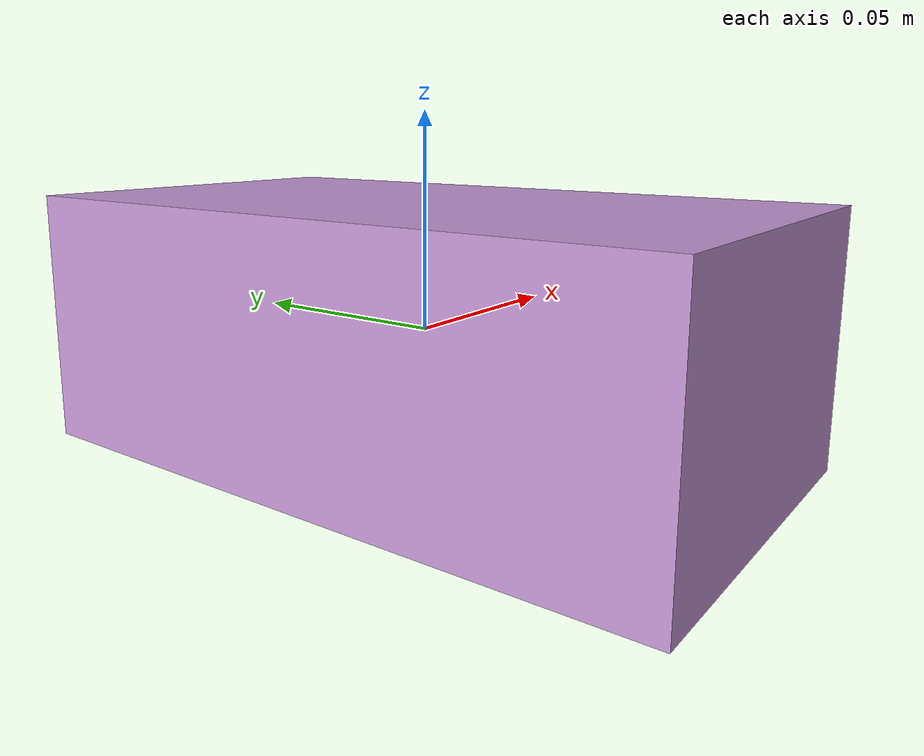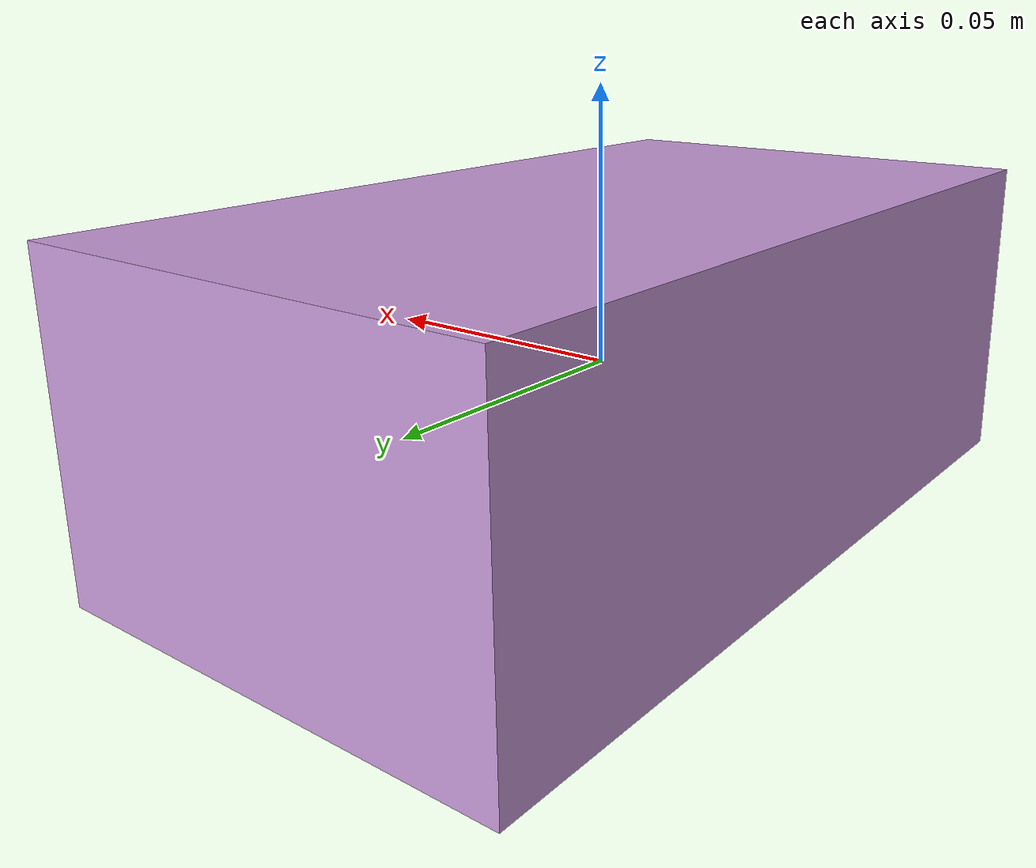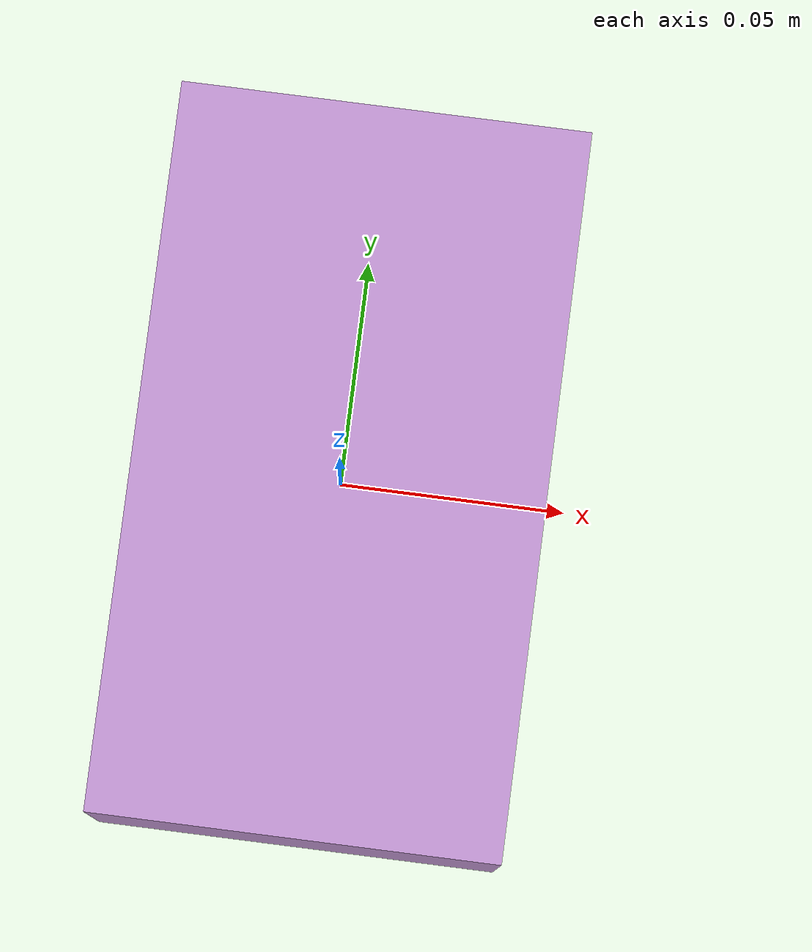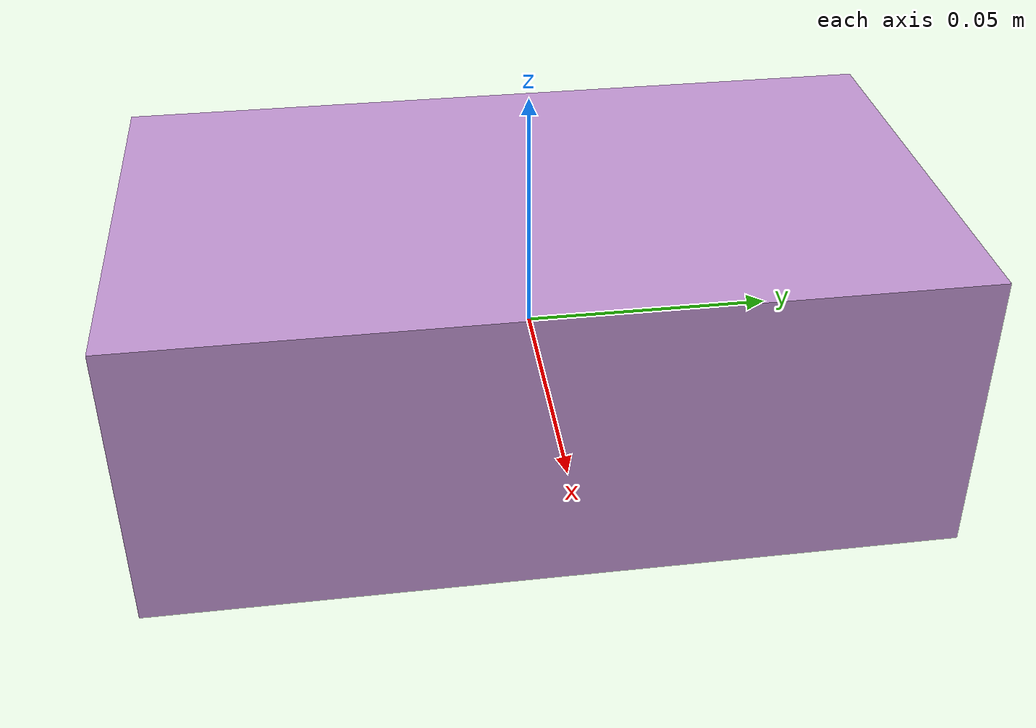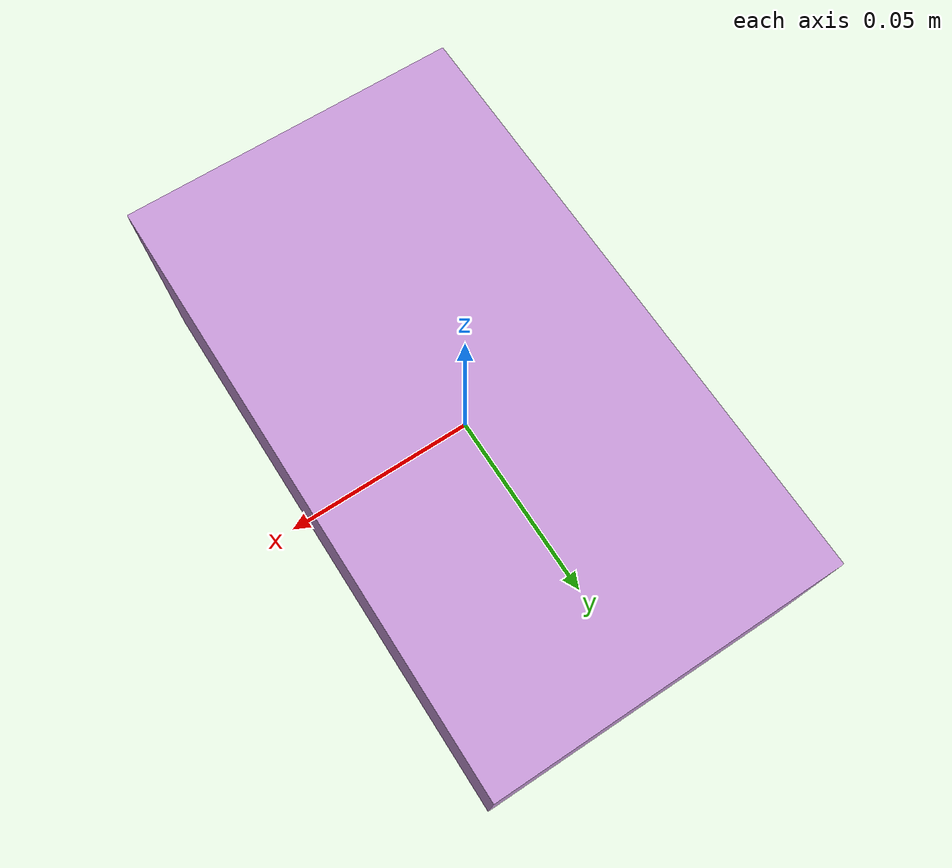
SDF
<?xml version="1.0"?>
<sdf version="1.7">
  <model name="block3">
    <pose> 0 0 0 0 0 0 </pose>
    <link name="block3_link">
      <inertial>
        <mass>1</mass>
        <inertia>
          <ixx>0.1325447608015108</ixx>
          <ixy>0.0</ixy>
          <ixz>0.0</ixz>
          <iyy>0.13748610190827598</iyy>
          <iyz>0.0</iyz>
          <izz>0.1292518793392434</izz>
        </inertia>
      </inertial>
      <collision name="collision">
        <geometry>
          <box>
            <size> 0.09 0.16 0.06 </size>
          </box>
        </geometry>
      </collision>
      <visual name="visual">
        <geometry>
          <box>
            <size> 0.09 0.16 0.06 </size>
          </box>
        </geometry>
        <material>
          <diffuse>0.7725490196078432 0.596078431372549 0.8392156862745098 1.0</diffuse>
        </material>
      </visual>
    </link>
  </model>
</sdf>
